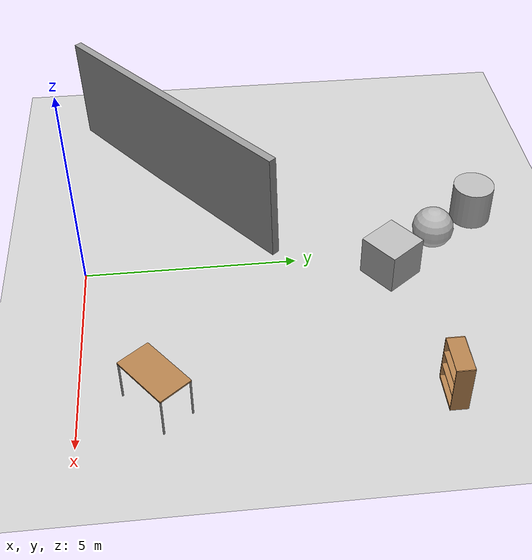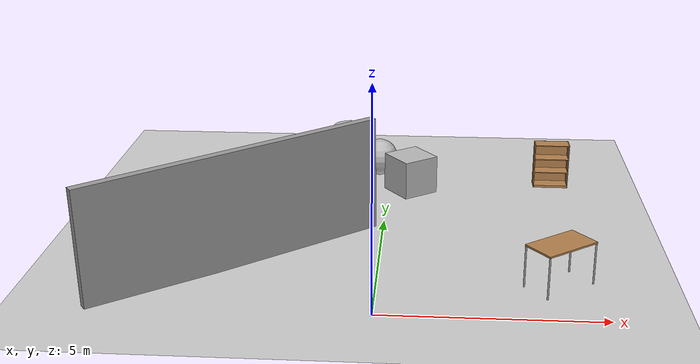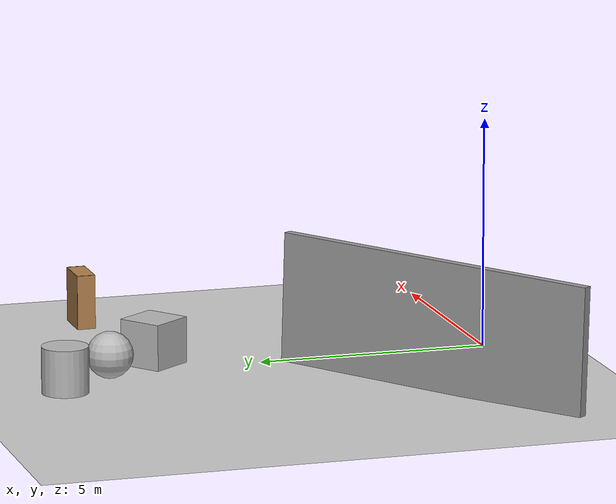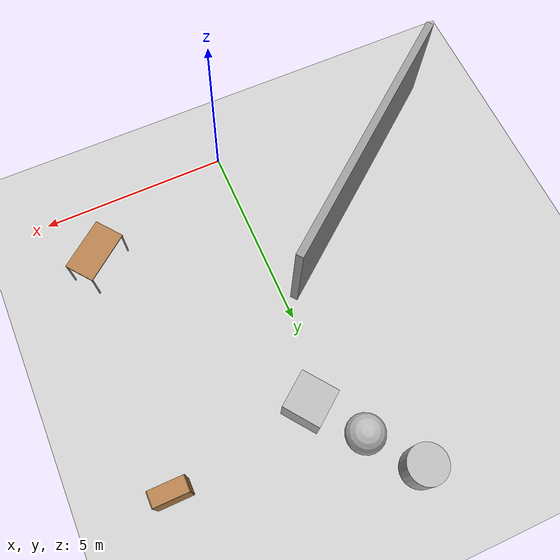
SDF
<sdf version="1.6">
 <world name="default">
  <model name="ground_plane">
   <static>1</static>
   <link name="link">
    <collision name="collision">
     <geometry><plane><normal>0 0 1</normal><size>100 100</size></plane></geometry>
     <surface><friction><ode><mu>100</mu><mu2>50</mu2></ode></friction></surface>
    </collision>
    <visual name="visual">
     <cast_shadows>0</cast_shadows>
     <geometry><plane><normal>0 0 1</normal><size>100 100</size></plane></geometry>
     <material>
      <script><uri>file://media/materials/scripts/gazebo.material</uri><name>Gazebo/Grey</name></script>
     </material>
    </visual>
   </link>
  </model>
  <model name="bookshelf">
   <static>1</static>
   <link name="link">
    <inertial><mass>1</mass></inertial>
    <collision name="back">
     <pose>0 0.005 0.6 0 -0 0</pose>
     <geometry><box><size>0.9 0.01 1.2</size></box></geometry>
    </collision>
    <visual name="visual1">
     <pose>0 0.005 0.6 0 -0 0</pose>
     <geometry><box><size>0.9 0.01 1.2</size></box></geometry>
     <material>
      <script><uri>file://media/materials/scripts/gazebo.material</uri><name>Gazebo/Wood</name></script>
     </material>
    </visual>
    <collision name="left_side">
     <pose>0.45 -0.195 0.6 0 -0 0</pose>
     <geometry><box><size>0.02 0.4 1.2</size></box></geometry>
    </collision>
    <visual name="visual2">
     <pose>0.45 -0.195 0.6 0 -0 0</pose>
     <geometry><box><size>0.02 0.4 1.2</size></box></geometry>
     <material>
      <script><uri>file://media/materials/scripts/gazebo.material</uri><name>Gazebo/Wood</name></script>
     </material>
    </visual>
    <collision name="right_side">
     <pose>-0.45 -0.195 0.6 0 -0 0</pose>
     <geometry><box><size>0.02 0.4 1.2</size></box></geometry>
    </collision>
    <visual name="visual3">
     <pose>-0.45 -0.195 0.6 0 -0 0</pose>
     <geometry><box><size>0.02 0.4 1.2</size></box></geometry>
     <material>
      <script><uri>file://media/materials/scripts/gazebo.material</uri><name>Gazebo/Wood</name></script>
     </material>
    </visual>
    <collision name="bottom">
     <pose>0 -0.195 0.03 0 -0 0</pose>
     <geometry><box><size>0.88 0.4 0.06</size></box></geometry>
    </collision>
    <visual name="visual4">
     <pose>0 -0.195 0.03 0 -0 0</pose>
     <geometry><box><size>0.88 0.4 0.06</size></box></geometry>
     <material>
      <script><uri>file://media/materials/scripts/gazebo.material</uri><name>Gazebo/Wood</name></script>
     </material>
    </visual>
    <collision name="top">
     <pose>0 -0.195 1.19 0 -0 0</pose>
     <geometry><box><size>0.88 0.4 0.02</size></box></geometry>
    </collision>
    <visual name="visual5">
     <pose>0 -0.195 1.19 0 -0 0</pose>
     <geometry><box><size>0.88 0.4 0.02</size></box></geometry>
     <material>
      <script><uri>file://media/materials/scripts/gazebo.material</uri><name>Gazebo/Wood</name></script>
     </material>
    </visual>
    <collision name="low_shelf">
     <pose>0 -0.195 0.43 0 -0 0</pose>
     <geometry><box><size>0.88 0.4 0.02</size></box></geometry>
    </collision>
    <visual name="visual6">
     <pose>0 -0.195 0.43 0 -0 0</pose>
     <geometry><box><size>0.88 0.4 0.02</size></box></geometry>
     <material>
      <script><uri>file://media/materials/scripts/gazebo.material</uri><name>Gazebo/Wood</name></script>
     </material>
    </visual>
    <collision name="high_shelf">
     <pose>0 -0.195 0.8 0 -0 0</pose>
     <geometry><box><size>0.88 0.4 0.02</size></box></geometry>
    </collision>
    <visual name="visual7">
     <pose>0 -0.195 0.8 0 -0 0</pose>
     <geometry><box><size>0.88 0.4 0.02</size></box></geometry>
     <material>
      <script><uri>file://media/materials/scripts/gazebo.material</uri><name>Gazebo/Wood</name></script>
     </material>
    </visual>
   </link>
   <pose>4.37362 8.00409 0 0 -0 0</pose>
  </model>
  <model name="textured_shapes">
   <pose>-0.307519 8.3938 0.5 0 -0 0.64384</pose>
   <link name="box">
    <pose>0 -1.5 0 0 -0 0</pose>
    <collision name="collision"><geometry><box><size>1 1 1</size></box></geometry></collision>
    <visual name="visual">
     <geometry><box><size>1 1 1</size></box></geometry>
     <material>
      <script>
       <uri>model://textured_shapes/materials/scripts</uri>
       <uri>model://textured_shapes/materials/textures</uri>
       <name>TexturedShape/Squares</name>
      </script>
     </material>
    </visual>
    <inertial>
     <inertia><ixx>1</ixx><ixy>0</ixy><ixz>0</ixz><iyy>1</iyy><iyz>0</iyz><izz>1</izz></inertia>
     <mass>1</mass>
    </inertial>
   </link>
   <link name="sphere">
    <collision name="collision"><geometry><sphere><radius>0.5</radius></sphere></geometry></collision>
    <visual name="visual">
     <geometry><sphere><radius>0.5</radius></sphere></geometry>
     <material>
      <script>
       <uri>model://textured_shapes/materials/scripts</uri>
       <uri>model://textured_shapes/materials/textures</uri>
       <name>TexturedShape/Squares</name>
      </script>
     </material>
    </visual>
    <inertial>
     <inertia><ixx>1</ixx><ixy>0</ixy><ixz>0</ixz><iyy>1</iyy><iyz>0</iyz><izz>1</izz></inertia>
     <mass>1</mass>
    </inertial>
   </link>
   <link name="cylinder">
    <pose>0 1.5 0 0 -0 0</pose>
    <collision name="collision">
     <geometry><cylinder><radius>0.5</radius><length>1</length></cylinder></geometry>
    </collision>
    <visual name="visual">
     <geometry><cylinder><radius>0.5</radius><length>1</length></cylinder></geometry>
     <material>
      <script>
       <uri>model://textured_shapes/materials/scripts</uri>
       <uri>model://textured_shapes/materials/textures</uri>
       <name>TexturedShape/Squares</name>
      </script>
     </material>
    </visual>
    <inertial>
     <inertia><ixx>1</ixx><ixy>0</ixy><ixz>0</ixz><iyy>1</iyy><iyz>0</iyz><izz>1</izz></inertia>
     <mass>1</mass>
    </inertial>
   </link>
  </model>
  <model name="grey_wall">
   <static>1</static>
   <link name="link">
    <pose>0 0 1.4 0 -0 0</pose>
    <collision name="collision"><geometry><box><size>7.5 0.2 2.8</size></box></geometry></collision>
    <visual name="visual">
     <cast_shadows>0</cast_shadows>
     <geometry><box><size>7.5 0.2 2.8</size></box></geometry>
     <material>
      <script>
       <uri>model://grey_wall/materials/scripts</uri>
       <uri>model://grey_wall/materials/textures</uri>
       <name>vrc/grey_wall</name>
      </script>
     </material>
    </visual>
   </link>
   <pose>-3.18514 2.23987 4e-06 0.01417 -0.022146 0.663578</pose>
  </model>
  <model name="table_2">
   <static>0</static>
   <link name="link">
    <collision name="surface">
     <pose>0 0 1 0 -0 0</pose>
     <geometry><box><size>1.5 0.8 0.03</size></box></geometry>
     <surface><friction><ode><mu>0.6</mu><mu2>0.6</mu2></ode></friction></surface>
    </collision>
    <visual name="visual1">
     <pose>0 0 1 0 -0 0</pose>
     <geometry><box><size>1.4 0.8 0.04</size></box></geometry>
     <material>
      <script><uri>file://media/materials/scripts/gazebo.material</uri><name>Gazebo/Wood</name></script>
     </material>
    </visual>
    <collision name="front_left_leg">
     <pose>0.68 0.38 0.5 0 -0 0</pose>
     <geometry><cylinder><radius>0.02</radius><length>1</length></cylinder></geometry>
    </collision>
    <visual name="front_left_leg">
     <pose>0.68 0.38 0.5 0 -0 0</pose>
     <geometry><cylinder><radius>0.02</radius><length>1</length></cylinder></geometry>
     <material>
      <script><uri>file://media/materials/scripts/gazebo.material</uri><name>Gazebo/Grey</name></script>
     </material>
    </visual>
    <collision name="front_right_leg">
     <pose>0.68 -0.38 0.5 0 -0 0</pose>
     <geometry><cylinder><radius>0.02</radius><length>1</length></cylinder></geometry>
    </collision>
    <visual name="front_right_leg">
     <pose>0.68 -0.38 0.5 0 -0 0</pose>
     <geometry><cylinder><radius>0.02</radius><length>1</length></cylinder></geometry>
     <material>
      <script><uri>file://media/materials/scripts/gazebo.material</uri><name>Gazebo/Grey</name></script>
     </material>
    </visual>
    <collision name="back_right_leg">
     <pose>-0.68 -0.38 0.5 0 -0 0</pose>
     <geometry><cylinder><radius>0.02</radius><length>1</length></cylinder></geometry>
    </collision>
    <visual name="back_right_leg">
     <pose>-0.68 -0.38 0.5 0 -0 0</pose>
     <geometry><cylinder><radius>0.02</radius><length>1</length></cylinder></geometry>
     <material>
      <script><uri>file://media/materials/scripts/gazebo.material</uri><name>Gazebo/Grey</name></script>
     </material>
    </visual>
    <collision name="back_left_leg">
     <pose>-0.68 0.38 0.5 0 -0 0</pose>
     <geometry><cylinder><radius>0.02</radius><length>1</length></cylinder></geometry>
    </collision>
    <visual name="back_left_leg">
     <pose>-0.68 0.38 0.5 0 -0 0</pose>
     <geometry><cylinder><radius>0.02</radius><length>1</length></cylinder></geometry>
     <material>
      <script><uri>file://media/materials/scripts/gazebo.material</uri><name>Gazebo/Grey</name></script>
     </material>
    </visual>
    <inertial>
     <inertia><ixx>1</ixx><ixy>0</ixy><ixz>0</ixz><iyy>1</iyy><iyz>0</iyz><izz>1</izz></inertia>
     <mass>1</mass>
    </inertial>
   </link>
   <pose>4.02933 1.6454 -1e-05 0 -0 0.661845</pose>
  </model>
 </world>
</sdf>
